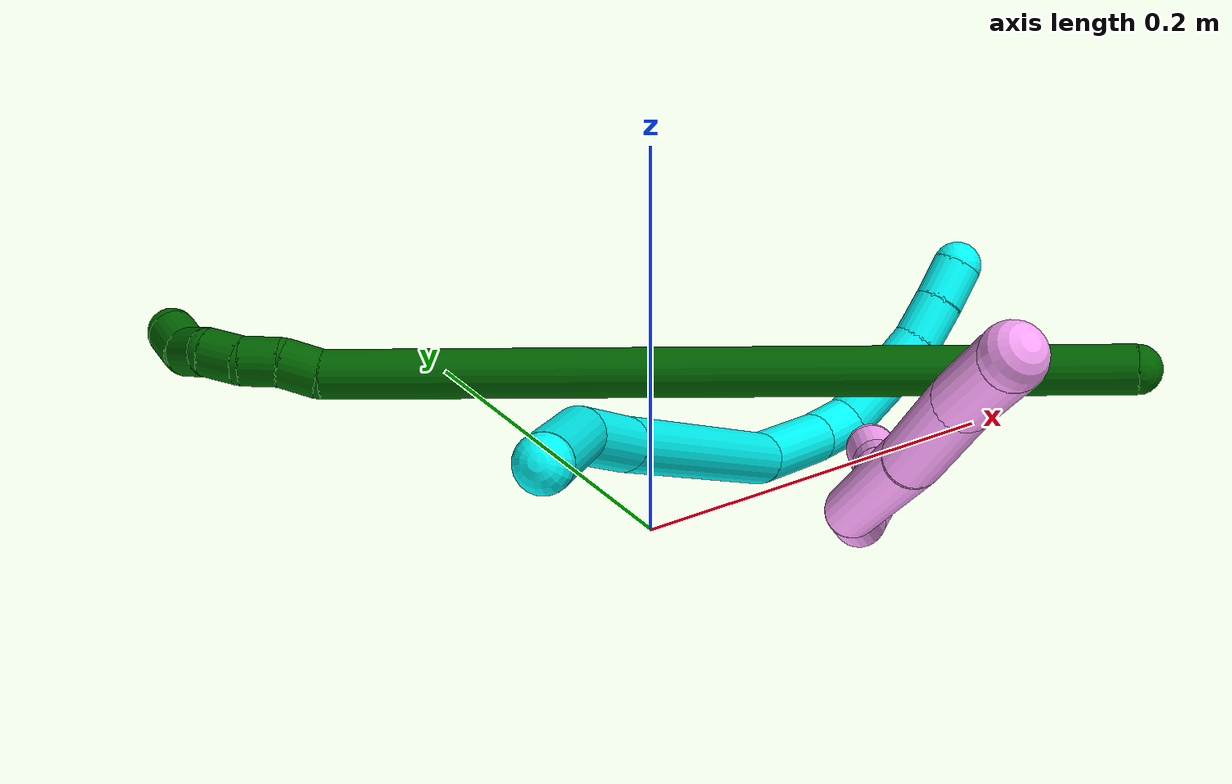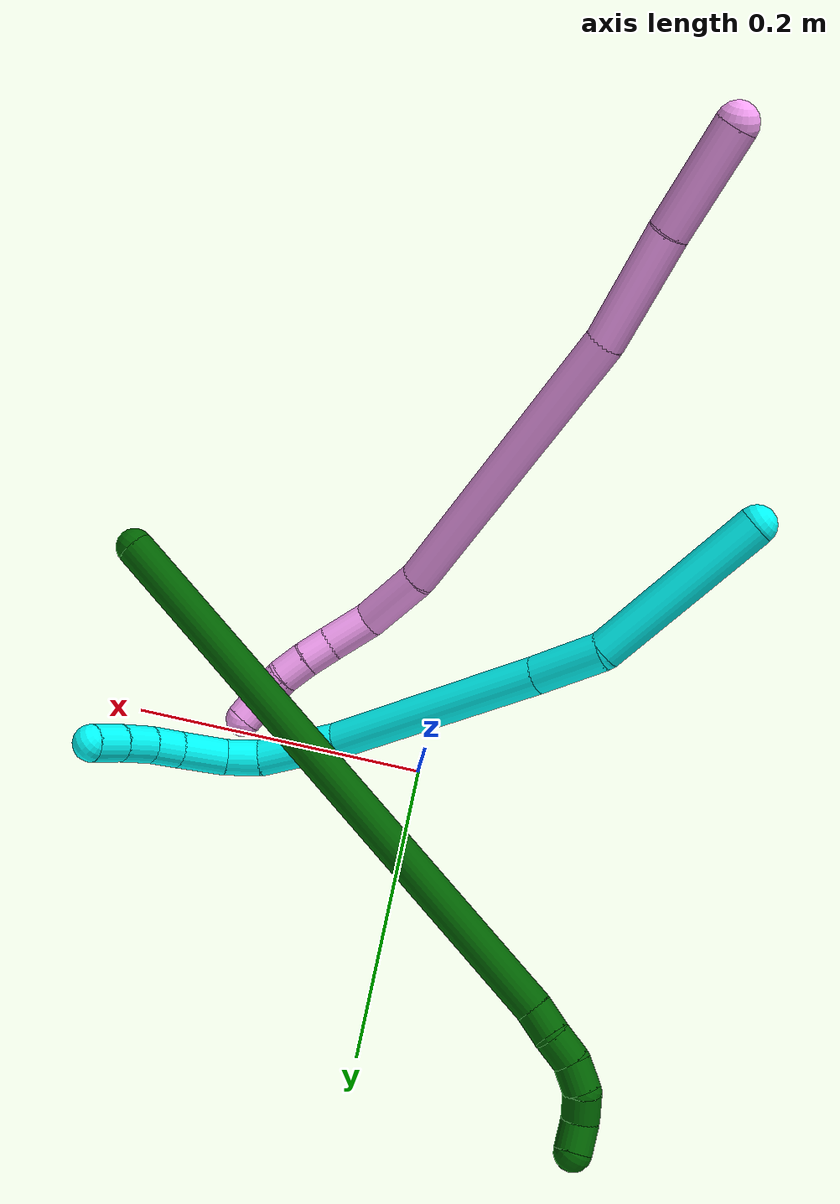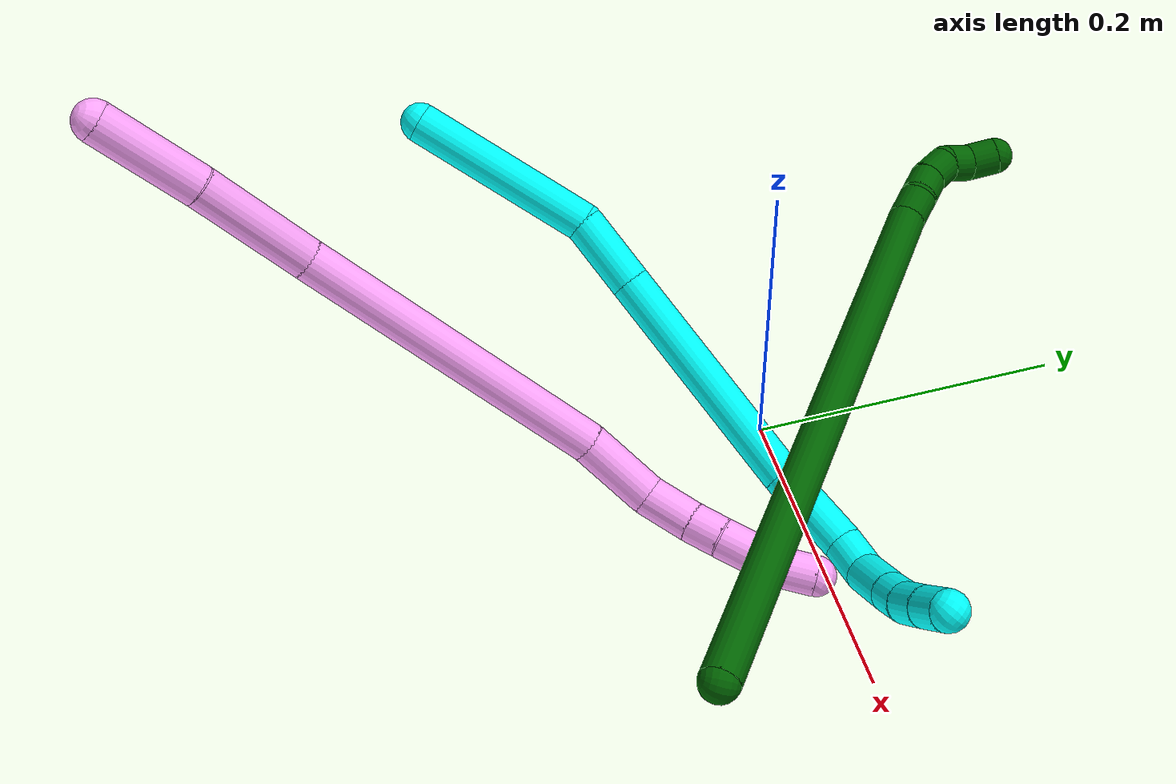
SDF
<sdf version="1.7">
 <world name="default">
  <model name="photoneo_s_sensor">
   <static>1</static>
   <pose>0 0 2 1.57079 1.57079 3.14159</pose>
   <link name="link">
    <inertial><mass>0.1</mass></inertial>
    <sensor name="sensor" type="depth">
     <update_rate>30</update_rate>
     <camera>
      <horizontal_fov>1.22</horizontal_fov>
      <image><width>1920</width><height>1200</height><format>B8G8R8</format></image>
      <clip><near>0.1</near><far>4</far></clip>
      <depth_camera><output>points</output></depth_camera>
     </camera>
     <plugin name="camera_plugin" filename="libgazebo_ros_depth_camera.so">
      <baseline>0.2</baseline>
      <alwaysOn>1</alwaysOn>
      <updateRate>0.0</updateRate>
      <cameraName>camera_ir</cameraName>
      <imageTopicName>/camera/color/image_raw</imageTopicName>
      <cameraInfoTopicName>/camera/color/camera_info</cameraInfoTopicName>
      <depthImageTopicName>/camera/depth/image_raw</depthImageTopicName>
      <depthImageCameraInfoTopicName>/camera/depth/camera_info</depthImageCameraInfoTopicName>
      <pointCloudTopicName>/camera/depth/points</pointCloudTopicName>
      <frameName>fr_optical</frameName>
      <pointCloudCutoff>0.1</pointCloudCutoff>
      <pointCloudCutoffMax>2.0</pointCloudCutoffMax>
      <distortionK1>0</distortionK1>
      <distortionK2>0</distortionK2>
      <distortionK3>0</distortionK3>
      <distortionT1>0</distortionT1>
      <distortionT2>0</distortionT2>
      <CxPrime>0</CxPrime>
      <Cx>0</Cx>
      <Cy>0</Cy>
      <focalLength>0</focalLength>
      <hackBaseline>0</hackBaseline>
     </plugin>
    </sensor>
   </link>
  </model>
  <model name="bin">
   <static>1</static>
   <link name="bottom">
    <collision name="collision-bottom">
     <pose>0 0 -0.01 0 -0 0</pose>
     <geometry><box><size>0.8 0.6 0.02</size></box></geometry>
     <surface>
      <friction><ode><mu>100</mu><mu2>100</mu2></ode></friction>
      <contact><collide_bitmask>65535</collide_bitmask></contact>
     </surface>
    </collision>
   </link>
   <link name="west_wall">
    <collision name="collision-west_wall">
     <pose>-0.41 0 0.1 0 -0 0</pose>
     <geometry><box><size>0.02 0.6 0.2</size></box></geometry>
     <surface>
      <friction><ode><mu>100</mu><mu2>100</mu2></ode></friction>
      <contact><collide_bitmask>65535</collide_bitmask></contact>
     </surface>
    </collision>
   </link>
   <link name="east_wall">
    <collision name="collision-east_wall">
     <pose>0.41 0 0.1 0 -0 0</pose>
     <geometry><box><size>0.02 0.6 0.2</size></box></geometry>
     <surface>
      <friction><ode><mu>100</mu><mu2>100</mu2></ode></friction>
      <contact><collide_bitmask>65535</collide_bitmask></contact>
     </surface>
    </collision>
   </link>
   <link name="south_wall">
    <collision name="collision-south_wall">
     <pose>0 -0.31 0.1 0 -0 0</pose>
     <geometry><box><size>0.8 0.02 0.2</size></box></geometry>
     <surface>
      <friction><ode><mu>100</mu><mu2>100</mu2></ode></friction>
      <contact><collide_bitmask>65535</collide_bitmask></contact>
     </surface>
    </collision>
   </link>
   <link name="north_wall">
    <collision name="collision-north_wall">
     <pose>0 0.31 0.1 0 -0 0</pose>
     <geometry><box><size>0.8 0.02 0.2</size></box></geometry>
     <surface>
      <friction><ode><mu>100</mu><mu2>100</mu2></ode></friction>
      <contact><collide_bitmask>65535</collide_bitmask></contact>
     </surface>
    </collision>
   </link>
  </model>
  <model name="3">
   <static>0</static>
   <link name="3">
    <collision name="collision-cylinder-e_1_1_4">
     <pose>-0.000265 0.009664 -0.058177 -2.97699 -0.004485 0.054362</pose>
     <geometry><cylinder><radius>0.0125</radius><length>0.117949</length></cylinder></geometry>
     <surface>
      <friction><ode><mu>1.16</mu><mu2>1.16</mu2><slip1>0</slip1><slip2>0</slip2></ode></friction>
      <contact><ode><kp>1e+06</kp><kd>1</kd><max_vel>0</max_vel><min_depth>0.001</min_depth></ode></contact>
     </surface>
    </collision>
    <visual name="visual-cylinder-e_1_1_4">
     <pose>-0.000265 0.009664 -0.058177 -2.97699 -0.004485 0.054362</pose>
     <geometry><cylinder><radius>0.0125</radius><length>0.117949</length></cylinder></geometry>
     <material><ambient>0.003922 1 0.996078 1</ambient></material>
    </visual>
    <collision name="collision-cylinder-e_2_4_5">
     <pose>0.004504 0.016183 -0.139284 3.00531 0.214122 2.01007</pose>
     <geometry><cylinder><radius>0.0125</radius><length>0.047372</length></cylinder></geometry>
     <surface>
      <friction><ode><mu>1.16</mu><mu2>1.16</mu2><slip1>0</slip1><slip2>0</slip2></ode></friction>
      <contact><ode><kp>1e+06</kp><kd>1</kd><max_vel>0</max_vel><min_depth>0.001</min_depth></ode></contact>
     </surface>
    </collision>
    <visual name="visual-cylinder-e_2_4_5">
     <pose>0.004504 0.016183 -0.139284 3.00531 0.214122 2.01007</pose>
     <geometry><cylinder><radius>0.0125</radius><length>0.047372</length></cylinder></geometry>
     <material><ambient>0.003922 1 0.996078 1</ambient></material>
    </visual>
    <collision name="collision-cylinder-e_3_5_6">
     <pose>0.028724 0.004519 -0.235267 3.0255 0.255192 2.29096</pose>
     <geometry><cylinder><radius>0.0125</radius><length>0.152017</length></cylinder></geometry>
     <surface>
      <friction><ode><mu>1.16</mu><mu2>1.16</mu2><slip1>0</slip1><slip2>0</slip2></ode></friction>
      <contact><ode><kp>1e+06</kp><kd>1</kd><max_vel>0</max_vel><min_depth>0.001</min_depth></ode></contact>
     </surface>
    </collision>
    <visual name="visual-cylinder-e_3_5_6">
     <pose>0.028724 0.004519 -0.235267 3.0255 0.255192 2.29096</pose>
     <geometry><cylinder><radius>0.0125</radius><length>0.152017</length></cylinder></geometry>
     <material><ambient>0.003922 1 0.996078 1</ambient></material>
    </visual>
    <collision name="collision-cylinder-e_4_6_7">
     <pose>0.060473 -0.002747 -0.33364 -3.09214 0.460044 -2.93116</pose>
     <geometry><cylinder><radius>0.0125</radius><length>0.056588</length></cylinder></geometry>
     <surface>
      <friction><ode><mu>1.16</mu><mu2>1.16</mu2><slip1>0</slip1><slip2>0</slip2></ode></friction>
      <contact><ode><kp>1e+06</kp><kd>1</kd><max_vel>0</max_vel><min_depth>0.001</min_depth></ode></contact>
     </surface>
    </collision>
    <visual name="visual-cylinder-e_4_6_7">
     <pose>0.060473 -0.002747 -0.33364 -3.09214 0.460044 -2.93116</pose>
     <geometry><cylinder><radius>0.0125</radius><length>0.056588</length></cylinder></geometry>
     <material><ambient>0.003922 1 0.996078 1</ambient></material>
    </visual>
    <collision name="collision-cylinder-e_5_7_8">
     <pose>0.08195 -0.000119 -0.36739 -2.97993 0.806883 -2.76651</pose>
     <geometry><cylinder><radius>0.0125</radius><length>0.024689</length></cylinder></geometry>
     <surface>
      <friction><ode><mu>1.16</mu><mu2>1.16</mu2><slip1>0</slip1><slip2>0</slip2></ode></friction>
      <contact><ode><kp>1e+06</kp><kd>1</kd><max_vel>0</max_vel><min_depth>0.001</min_depth></ode></contact>
     </surface>
    </collision>
    <visual name="visual-cylinder-e_5_7_8">
     <pose>0.08195 -0.000119 -0.36739 -2.97993 0.806883 -2.76651</pose>
     <geometry><cylinder><radius>0.0125</radius><length>0.024689</length></cylinder></geometry>
     <material><ambient>0.003922 1 0.996078 1</ambient></material>
    </visual>
    <collision name="collision-cylinder-e_6_8_9">
     <pose>0.106048 0.008321 -0.380789 -2.18384 1.05349 -1.684</pose>
     <geometry><cylinder><radius>0.0125</radius><length>0.034937</length></cylinder></geometry>
     <surface>
      <friction><ode><mu>1.16</mu><mu2>1.16</mu2><slip1>0</slip1><slip2>0</slip2></ode></friction>
      <contact><ode><kp>1e+06</kp><kd>1</kd><max_vel>0</max_vel><min_depth>0.001</min_depth></ode></contact>
     </surface>
    </collision>
    <visual name="visual-cylinder-e_6_8_9">
     <pose>0.106048 0.008321 -0.380789 -2.18384 1.05349 -1.684</pose>
     <geometry><cylinder><radius>0.0125</radius><length>0.034937</length></cylinder></geometry>
     <material><ambient>0.003922 1 0.996078 1</ambient></material>
    </visual>
    <collision name="collision-cylinder-e_7_9_10">
     <pose>0.130296 0.020047 -0.388128 -2.04105 1.04775 -1.51078</pose>
     <geometry><cylinder><radius>0.0125</radius><length>0.02093</length></cylinder></geometry>
     <surface>
      <friction><ode><mu>1.16</mu><mu2>1.16</mu2><slip1>0</slip1><slip2>0</slip2></ode></friction>
      <contact><ode><kp>1e+06</kp><kd>1</kd><max_vel>0</max_vel><min_depth>0.001</min_depth></ode></contact>
     </surface>
    </collision>
    <visual name="visual-cylinder-e_7_9_10">
     <pose>0.130296 0.020047 -0.388128 -2.04105 1.04775 -1.51078</pose>
     <geometry><cylinder><radius>0.0125</radius><length>0.02093</length></cylinder></geometry>
     <material><ambient>0.003922 1 0.996078 1</ambient></material>
    </visual>
    <collision name="collision-cylinder-e_8_10_11">
     <pose>0.148545 0.031755 -0.39228 -1.81868 0.901112 -1.11205</pose>
     <geometry><cylinder><radius>0.0125</radius><length>0.023425</length></cylinder></geometry>
     <surface>
      <friction><ode><mu>1.16</mu><mu2>1.16</mu2><slip1>0</slip1><slip2>0</slip2></ode></friction>
      <contact><ode><kp>1e+06</kp><kd>1</kd><max_vel>0</max_vel><min_depth>0.001</min_depth></ode></contact>
     </surface>
    </collision>
    <visual name="visual-cylinder-e_8_10_11">
     <pose>0.148545 0.031755 -0.39228 -1.81868 0.901112 -1.11205</pose>
     <geometry><cylinder><radius>0.0125</radius><length>0.023425</length></cylinder></geometry>
     <material><ambient>0.003922 1 0.996078 1</ambient></material>
    </visual>
    <collision name="collision-cylinder-e_9_11_2">
     <pose>0.166035 0.045795 -0.39609 -1.85285 0.851253 -1.08577</pose>
     <geometry><cylinder><radius>0.0125</radius><length>0.022092</length></cylinder></geometry>
     <surface>
      <friction><ode><mu>1.16</mu><mu2>1.16</mu2><slip1>0</slip1><slip2>0</slip2></ode></friction>
      <contact><ode><kp>1e+06</kp><kd>1</kd><max_vel>0</max_vel><min_depth>0.001</min_depth></ode></contact>
     </surface>
    </collision>
    <visual name="visual-cylinder-e_9_11_2">
     <pose>0.166035 0.045795 -0.39609 -1.85285 0.851253 -1.08577</pose>
     <geometry><cylinder><radius>0.0125</radius><length>0.022092</length></cylinder></geometry>
     <material><ambient>0.003922 1 0.996078 1</ambient></material>
    </visual>
    <collision name="collision-sphere-2">
     <pose>0.174343 0.052787 -0.398116 0 -0 0</pose>
     <geometry><sphere><radius>0.0125</radius></sphere></geometry>
     <surface>
      <friction><ode><mu>1.16</mu><mu2>1.16</mu2><slip1>0</slip1><slip2>0</slip2></ode></friction>
      <contact><ode><kp>1e+06</kp><kd>1</kd><max_vel>0</max_vel><min_depth>0.001</min_depth></ode></contact>
     </surface>
    </collision>
    <visual name="visual-sphere-2">
     <pose>0.174343 0.052787 -0.398116 0 -0 0</pose>
     <geometry><sphere><radius>0.0125</radius></sphere></geometry>
     <material><ambient>0.003922 1 0.996078 1</ambient></material>
    </visual>
    <collision name="collision-sphere-11">
     <pose>0.157727 0.038803 -0.394064 0 -0 0</pose>
     <geometry><sphere><radius>0.0125</radius></sphere></geometry>
     <surface>
      <friction><ode><mu>1.16</mu><mu2>1.16</mu2><slip1>0</slip1><slip2>0</slip2></ode></friction>
      <contact><ode><kp>1e+06</kp><kd>1</kd><max_vel>0</max_vel><min_depth>0.001</min_depth></ode></contact>
     </surface>
    </collision>
    <visual name="visual-sphere-11">
     <pose>0.157727 0.038803 -0.394064 0 -0 0</pose>
     <geometry><sphere><radius>0.0125</radius></sphere></geometry>
     <material><ambient>0.003922 1 0.996078 1</ambient></material>
    </visual>
    <collision name="collision-sphere-10">
     <pose>0.139362 0.024707 -0.390496 0 -0 0</pose>
     <geometry><sphere><radius>0.0125</radius></sphere></geometry>
     <surface>
      <friction><ode><mu>1.16</mu><mu2>1.16</mu2><slip1>0</slip1><slip2>0</slip2></ode></friction>
      <contact><ode><kp>1e+06</kp><kd>1</kd><max_vel>0</max_vel><min_depth>0.001</min_depth></ode></contact>
     </surface>
    </collision>
    <visual name="visual-sphere-10">
     <pose>0.139362 0.024707 -0.390496 0 -0 0</pose>
     <geometry><sphere><radius>0.0125</radius></sphere></geometry>
     <material><ambient>0.003922 1 0.996078 1</ambient></material>
    </visual>
    <collision name="collision-sphere-9">
     <pose>0.121231 0.015387 -0.385759 0 -0 0</pose>
     <geometry><sphere><radius>0.0125</radius></sphere></geometry>
     <surface>
      <friction><ode><mu>1.16</mu><mu2>1.16</mu2><slip1>0</slip1><slip2>0</slip2></ode></friction>
      <contact><ode><kp>1e+06</kp><kd>1</kd><max_vel>0</max_vel><min_depth>0.001</min_depth></ode></contact>
     </surface>
    </collision>
    <visual name="visual-sphere-9">
     <pose>0.121231 0.015387 -0.385759 0 -0 0</pose>
     <geometry><sphere><radius>0.0125</radius></sphere></geometry>
     <material><ambient>0.003922 1 0.996078 1</ambient></material>
    </visual>
    <collision name="collision-sphere-4">
     <pose>-0.000529 0.019327 -0.116353 0 -0 0</pose>
     <geometry><sphere><radius>0.0125</radius></sphere></geometry>
     <surface>
      <friction><ode><mu>1.16</mu><mu2>1.16</mu2><slip1>0</slip1><slip2>0</slip2></ode></friction>
      <contact><ode><kp>1e+06</kp><kd>1</kd><max_vel>0</max_vel><min_depth>0.001</min_depth></ode></contact>
     </surface>
    </collision>
    <visual name="visual-sphere-4">
     <pose>-0.000529 0.019327 -0.116353 0 -0 0</pose>
     <geometry><sphere><radius>0.0125</radius></sphere></geometry>
     <material><ambient>0.003922 1 0.996078 1</ambient></material>
    </visual>
    <collision name="collision-sphere-1">
     <geometry><sphere><radius>0.0125</radius></sphere></geometry>
     <surface>
      <friction><ode><mu>1.16</mu><mu2>1.16</mu2><slip1>0</slip1><slip2>0</slip2></ode></friction>
      <contact><ode><kp>1e+06</kp><kd>1</kd><max_vel>0</max_vel><min_depth>0.001</min_depth></ode></contact>
     </surface>
    </collision>
    <visual name="visual-sphere-1">
     <geometry><sphere><radius>0.0125</radius></sphere></geometry>
     <material><ambient>0.003922 1 0.996078 1</ambient></material>
    </visual>
    <collision name="collision-sphere-8">
     <pose>0.090865 0.001255 -0.375818 0 -0 0</pose>
     <geometry><sphere><radius>0.0125</radius></sphere></geometry>
     <surface>
      <friction><ode><mu>1.16</mu><mu2>1.16</mu2><slip1>0</slip1><slip2>0</slip2></ode></friction>
      <contact><ode><kp>1e+06</kp><kd>1</kd><max_vel>0</max_vel><min_depth>0.001</min_depth></ode></contact>
     </surface>
    </collision>
    <visual name="visual-sphere-8">
     <pose>0.090865 0.001255 -0.375818 0 -0 0</pose>
     <geometry><sphere><radius>0.0125</radius></sphere></geometry>
     <material><ambient>0.003922 1 0.996078 1</ambient></material>
    </visual>
    <collision name="collision-sphere-5">
     <pose>0.009537 0.013038 -0.162215 0 -0 0</pose>
     <geometry><sphere><radius>0.0125</radius></sphere></geometry>
     <surface>
      <friction><ode><mu>1.16</mu><mu2>1.16</mu2><slip1>0</slip1><slip2>0</slip2></ode></friction>
      <contact><ode><kp>1e+06</kp><kd>1</kd><max_vel>0</max_vel><min_depth>0.001</min_depth></ode></contact>
     </surface>
    </collision>
    <visual name="visual-sphere-5">
     <pose>0.009537 0.013038 -0.162215 0 -0 0</pose>
     <geometry><sphere><radius>0.0125</radius></sphere></geometry>
     <material><ambient>0.003922 1 0.996078 1</ambient></material>
    </visual>
    <collision name="collision-sphere-6">
     <pose>0.047911 -0.004 -0.308319 0 -0 0</pose>
     <geometry><sphere><radius>0.0125</radius></sphere></geometry>
     <surface>
      <friction><ode><mu>1.16</mu><mu2>1.16</mu2><slip1>0</slip1><slip2>0</slip2></ode></friction>
      <contact><ode><kp>1e+06</kp><kd>1</kd><max_vel>0</max_vel><min_depth>0.001</min_depth></ode></contact>
     </surface>
    </collision>
    <visual name="visual-sphere-6">
     <pose>0.047911 -0.004 -0.308319 0 -0 0</pose>
     <geometry><sphere><radius>0.0125</radius></sphere></geometry>
     <material><ambient>0.003922 1 0.996078 1</ambient></material>
    </visual>
    <collision name="collision-sphere-7">
     <pose>0.073036 -0.001494 -0.358962 0 -0 0</pose>
     <geometry><sphere><radius>0.0125</radius></sphere></geometry>
     <surface>
      <friction><ode><mu>1.16</mu><mu2>1.16</mu2><slip1>0</slip1><slip2>0</slip2></ode></friction>
      <contact><ode><kp>1e+06</kp><kd>1</kd><max_vel>0</max_vel><min_depth>0.001</min_depth></ode></contact>
     </surface>
    </collision>
    <visual name="visual-sphere-7">
     <pose>0.073036 -0.001494 -0.358962 0 -0 0</pose>
     <geometry><sphere><radius>0.0125</radius></sphere></geometry>
     <material><ambient>0.003922 1 0.996078 1</ambient></material>
    </visual>
    <inertial>
     <pose>0.047148 0.009802 -0.233084 0 -0 0</pose>
     <mass>0.5</mass>
     <inertia>
      <ixx>0.000169</ixx>
      <ixy>0</ixy>
      <ixz>0</ixz>
      <iyy>0.000323</iyy>
      <iyz>0</iyz>
      <izz>-0.00012</izz>
     </inertia>
    </inertial>
   </link>
   <pose>-0.16411 -0.174059 0.16621 0.967342 -0.437273 -0.486234</pose>
  </model>
  <model name="4">
   <static>0</static>
   <link name="4">
    <collision name="collision-cylinder-e_1_1_4">
     <pose>0.007881 0.008028 -0.030369 -2.88316 0.245815 -1.52022</pose>
     <geometry><cylinder><radius>0.0125</radius><length>0.06477</length></cylinder></geometry>
     <surface>
      <friction><ode><mu>1.16</mu><mu2>1.16</mu2><slip1>0</slip1><slip2>0</slip2></ode></friction>
      <contact><ode><kp>1e+06</kp><kd>1</kd><max_vel>0</max_vel><min_depth>0.001</min_depth></ode></contact>
     </surface>
    </collision>
    <visual name="visual-cylinder-e_1_1_4">
     <pose>0.007881 0.008028 -0.030369 -2.88316 0.245815 -1.52022</pose>
     <geometry><cylinder><radius>0.0125</radius><length>0.06477</length></cylinder></geometry>
     <material><ambient>1 0.65098 0.996078 1</ambient></material>
    </visual>
    <collision name="collision-cylinder-e_2_4_5">
     <pose>0.024453 0.021988 -0.096057 -2.97519 0.238071 -1.92381</pose>
     <geometry><cylinder><radius>0.0125</radius><length>0.073709</length></cylinder></geometry>
     <surface>
      <friction><ode><mu>1.16</mu><mu2>1.16</mu2><slip1>0</slip1><slip2>0</slip2></ode></friction>
      <contact><ode><kp>1e+06</kp><kd>1</kd><max_vel>0</max_vel><min_depth>0.001</min_depth></ode></contact>
     </surface>
    </collision>
    <visual name="visual-cylinder-e_2_4_5">
     <pose>0.024453 0.021988 -0.096057 -2.97519 0.238071 -1.92381</pose>
     <geometry><cylinder><radius>0.0125</radius><length>0.073709</length></cylinder></geometry>
     <material><ambient>1 0.65098 0.996078 1</ambient></material>
    </visual>
    <collision name="collision-cylinder-e_3_5_6">
     <pose>0.064644 0.060679 -0.220127 -2.78799 0.321421 -1.47368</pose>
     <geometry><cylinder><radius>0.0125</radius><length>0.199417</length></cylinder></geometry>
     <surface>
      <friction><ode><mu>1.16</mu><mu2>1.16</mu2><slip1>0</slip1><slip2>0</slip2></ode></friction>
      <contact><ode><kp>1e+06</kp><kd>1</kd><max_vel>0</max_vel><min_depth>0.001</min_depth></ode></contact>
     </surface>
    </collision>
    <visual name="visual-cylinder-e_3_5_6">
     <pose>0.064644 0.060679 -0.220127 -2.78799 0.321421 -1.47368</pose>
     <geometry><cylinder><radius>0.0125</radius><length>0.199417</length></cylinder></geometry>
     <material><ambient>1 0.65098 0.996078 1</ambient></material>
    </visual>
    <collision name="collision-cylinder-e_4_6_7">
     <pose>0.107875 0.101782 -0.328679 -2.74284 0.49972 -1.80216</pose>
     <geometry><cylinder><radius>0.0125</radius><length>0.048966</length></cylinder></geometry>
     <surface>
      <friction><ode><mu>1.16</mu><mu2>1.16</mu2><slip1>0</slip1><slip2>0</slip2></ode></friction>
      <contact><ode><kp>1e+06</kp><kd>1</kd><max_vel>0</max_vel><min_depth>0.001</min_depth></ode></contact>
     </surface>
    </collision>
    <visual name="visual-cylinder-e_4_6_7">
     <pose>0.107875 0.101782 -0.328679 -2.74284 0.49972 -1.80216</pose>
     <geometry><cylinder><radius>0.0125</radius><length>0.048966</length></cylinder></geometry>
     <material><ambient>1 0.65098 0.996078 1</ambient></material>
    </visual>
    <collision name="collision-cylinder-e_5_7_8">
     <pose>0.12686 0.120929 -0.357453 -2.26378 0.476757 -0.955308</pose>
     <geometry><cylinder><radius>0.0125</radius><length>0.03161</length></cylinder></geometry>
     <surface>
      <friction><ode><mu>1.16</mu><mu2>1.16</mu2><slip1>0</slip1><slip2>0</slip2></ode></friction>
      <contact><ode><kp>1e+06</kp><kd>1</kd><max_vel>0</max_vel><min_depth>0.001</min_depth></ode></contact>
     </surface>
    </collision>
    <visual name="visual-cylinder-e_5_7_8">
     <pose>0.12686 0.120929 -0.357453 -2.26378 0.476757 -0.955308</pose>
     <geometry><cylinder><radius>0.0125</radius><length>0.03161</length></cylinder></geometry>
     <material><ambient>1 0.65098 0.996078 1</ambient></material>
    </visual>
    <collision name="collision-cylinder-e_6_8_9">
     <pose>0.138322 0.139308 -0.371853 -2.19265 0.424193 -0.794002</pose>
     <geometry><cylinder><radius>0.0125</radius><length>0.020453</length></cylinder></geometry>
     <surface>
      <friction><ode><mu>1.16</mu><mu2>1.16</mu2><slip1>0</slip1><slip2>0</slip2></ode></friction>
      <contact><ode><kp>1e+06</kp><kd>1</kd><max_vel>0</max_vel><min_depth>0.001</min_depth></ode></contact>
     </surface>
    </collision>
    <visual name="visual-cylinder-e_6_8_9">
     <pose>0.138322 0.139308 -0.371853 -2.19265 0.424193 -0.794002</pose>
     <geometry><cylinder><radius>0.0125</radius><length>0.020453</length></cylinder></geometry>
     <material><ambient>1 0.65098 0.996078 1</ambient></material>
    </visual>
    <collision name="collision-cylinder-e_7_9_10">
     <pose>0.146336 0.153866 -0.383375 -2.28817 0.389622 -0.818923</pose>
     <geometry><cylinder><radius>0.0125</radius><length>0.020035</length></cylinder></geometry>
     <surface>
      <friction><ode><mu>1.16</mu><mu2>1.16</mu2><slip1>0</slip1><slip2>0</slip2></ode></friction>
      <contact><ode><kp>1e+06</kp><kd>1</kd><max_vel>0</max_vel><min_depth>0.001</min_depth></ode></contact>
     </surface>
    </collision>
    <visual name="visual-cylinder-e_7_9_10">
     <pose>0.146336 0.153866 -0.383375 -2.28817 0.389622 -0.818923</pose>
     <geometry><cylinder><radius>0.0125</radius><length>0.020035</length></cylinder></geometry>
     <material><ambient>1 0.65098 0.996078 1</ambient></material>
    </visual>
    <collision name="collision-cylinder-e_8_10_11">
     <pose>0.153254 0.166977 -0.397103 -2.46528 0.307864 -0.831049</pose>
     <geometry><cylinder><radius>0.0125</radius><length>0.020549</length></cylinder></geometry>
     <surface>
      <friction><ode><mu>1.16</mu><mu2>1.16</mu2><slip1>0</slip1><slip2>0</slip2></ode></friction>
      <contact><ode><kp>1e+06</kp><kd>1</kd><max_vel>0</max_vel><min_depth>0.001</min_depth></ode></contact>
     </surface>
    </collision>
    <visual name="visual-cylinder-e_8_10_11">
     <pose>0.153254 0.166977 -0.397103 -2.46528 0.307864 -0.831049</pose>
     <geometry><cylinder><radius>0.0125</radius><length>0.020549</length></cylinder></geometry>
     <material><ambient>1 0.65098 0.996078 1</ambient></material>
    </visual>
    <collision name="collision-cylinder-e_9_11_2">
     <pose>0.15787 0.180635 -0.411523 -2.30417 0.147146 -0.328263</pose>
     <geometry><cylinder><radius>0.0125</radius><length>0.020491</length></cylinder></geometry>
     <surface>
      <friction><ode><mu>1.16</mu><mu2>1.16</mu2><slip1>0</slip1><slip2>0</slip2></ode></friction>
      <contact><ode><kp>1e+06</kp><kd>1</kd><max_vel>0</max_vel><min_depth>0.001</min_depth></ode></contact>
     </surface>
    </collision>
    <visual name="visual-cylinder-e_9_11_2">
     <pose>0.15787 0.180635 -0.411523 -2.30417 0.147146 -0.328263</pose>
     <geometry><cylinder><radius>0.0125</radius><length>0.020491</length></cylinder></geometry>
     <material><ambient>1 0.65098 0.996078 1</ambient></material>
    </visual>
    <collision name="collision-sphere-2">
     <pose>0.159372 0.188165 -0.418307 0 -0 0</pose>
     <geometry><sphere><radius>0.0125</radius></sphere></geometry>
     <surface>
      <friction><ode><mu>1.16</mu><mu2>1.16</mu2><slip1>0</slip1><slip2>0</slip2></ode></friction>
      <contact><ode><kp>1e+06</kp><kd>1</kd><max_vel>0</max_vel><min_depth>0.001</min_depth></ode></contact>
     </surface>
    </collision>
    <visual name="visual-sphere-2">
     <pose>0.159372 0.188165 -0.418307 0 -0 0</pose>
     <geometry><sphere><radius>0.0125</radius></sphere></geometry>
     <material><ambient>1 0.65098 0.996078 1</ambient></material>
    </visual>
    <collision name="collision-sphere-11">
     <pose>0.156368 0.173106 -0.404739 0 -0 0</pose>
     <geometry><sphere><radius>0.0125</radius></sphere></geometry>
     <surface>
      <friction><ode><mu>1.16</mu><mu2>1.16</mu2><slip1>0</slip1><slip2>0</slip2></ode></friction>
      <contact><ode><kp>1e+06</kp><kd>1</kd><max_vel>0</max_vel><min_depth>0.001</min_depth></ode></contact>
     </surface>
    </collision>
    <visual name="visual-sphere-11">
     <pose>0.156368 0.173106 -0.404739 0 -0 0</pose>
     <geometry><sphere><radius>0.0125</radius></sphere></geometry>
     <material><ambient>1 0.65098 0.996078 1</ambient></material>
    </visual>
    <collision name="collision-sphere-10">
     <pose>0.150141 0.160849 -0.389467 0 -0 0</pose>
     <geometry><sphere><radius>0.0125</radius></sphere></geometry>
     <surface>
      <friction><ode><mu>1.16</mu><mu2>1.16</mu2><slip1>0</slip1><slip2>0</slip2></ode></friction>
      <contact><ode><kp>1e+06</kp><kd>1</kd><max_vel>0</max_vel><min_depth>0.001</min_depth></ode></contact>
     </surface>
    </collision>
    <visual name="visual-sphere-10">
     <pose>0.150141 0.160849 -0.389467 0 -0 0</pose>
     <geometry><sphere><radius>0.0125</radius></sphere></geometry>
     <material><ambient>1 0.65098 0.996078 1</ambient></material>
    </visual>
    <collision name="collision-sphere-9">
     <pose>0.142531 0.146883 -0.377283 0 -0 0</pose>
     <geometry><sphere><radius>0.0125</radius></sphere></geometry>
     <surface>
      <friction><ode><mu>1.16</mu><mu2>1.16</mu2><slip1>0</slip1><slip2>0</slip2></ode></friction>
      <contact><ode><kp>1e+06</kp><kd>1</kd><max_vel>0</max_vel><min_depth>0.001</min_depth></ode></contact>
     </surface>
    </collision>
    <visual name="visual-sphere-9">
     <pose>0.142531 0.146883 -0.377283 0 -0 0</pose>
     <geometry><sphere><radius>0.0125</radius></sphere></geometry>
     <material><ambient>1 0.65098 0.996078 1</ambient></material>
    </visual>
    <collision name="collision-sphere-4">
     <pose>0.015762 0.016056 -0.060737 0 -0 0</pose>
     <geometry><sphere><radius>0.0125</radius></sphere></geometry>
     <surface>
      <friction><ode><mu>1.16</mu><mu2>1.16</mu2><slip1>0</slip1><slip2>0</slip2></ode></friction>
      <contact><ode><kp>1e+06</kp><kd>1</kd><max_vel>0</max_vel><min_depth>0.001</min_depth></ode></contact>
     </surface>
    </collision>
    <visual name="visual-sphere-4">
     <pose>0.015762 0.016056 -0.060737 0 -0 0</pose>
     <geometry><sphere><radius>0.0125</radius></sphere></geometry>
     <material><ambient>1 0.65098 0.996078 1</ambient></material>
    </visual>
    <collision name="collision-sphere-1">
     <geometry><sphere><radius>0.0125</radius></sphere></geometry>
     <surface>
      <friction><ode><mu>1.16</mu><mu2>1.16</mu2><slip1>0</slip1><slip2>0</slip2></ode></friction>
      <contact><ode><kp>1e+06</kp><kd>1</kd><max_vel>0</max_vel><min_depth>0.001</min_depth></ode></contact>
     </surface>
    </collision>
    <visual name="visual-sphere-1">
     <geometry><sphere><radius>0.0125</radius></sphere></geometry>
     <material><ambient>1 0.65098 0.996078 1</ambient></material>
    </visual>
    <collision name="collision-sphere-8">
     <pose>0.134113 0.131732 -0.366424 0 -0 0</pose>
     <geometry><sphere><radius>0.0125</radius></sphere></geometry>
     <surface>
      <friction><ode><mu>1.16</mu><mu2>1.16</mu2><slip1>0</slip1><slip2>0</slip2></ode></friction>
      <contact><ode><kp>1e+06</kp><kd>1</kd><max_vel>0</max_vel><min_depth>0.001</min_depth></ode></contact>
     </surface>
    </collision>
    <visual name="visual-sphere-8">
     <pose>0.134113 0.131732 -0.366424 0 -0 0</pose>
     <geometry><sphere><radius>0.0125</radius></sphere></geometry>
     <material><ambient>1 0.65098 0.996078 1</ambient></material>
    </visual>
    <collision name="collision-sphere-5">
     <pose>0.033144 0.02792 -0.131378 0 -0 0</pose>
     <geometry><sphere><radius>0.0125</radius></sphere></geometry>
     <surface>
      <friction><ode><mu>1.16</mu><mu2>1.16</mu2><slip1>0</slip1><slip2>0</slip2></ode></friction>
      <contact><ode><kp>1e+06</kp><kd>1</kd><max_vel>0</max_vel><min_depth>0.001</min_depth></ode></contact>
     </surface>
    </collision>
    <visual name="visual-sphere-5">
     <pose>0.033144 0.02792 -0.131378 0 -0 0</pose>
     <geometry><sphere><radius>0.0125</radius></sphere></geometry>
     <material><ambient>1 0.65098 0.996078 1</ambient></material>
    </visual>
    <collision name="collision-sphere-6">
     <pose>0.096143 0.093438 -0.308876 0 -0 0</pose>
     <geometry><sphere><radius>0.0125</radius></sphere></geometry>
     <surface>
      <friction><ode><mu>1.16</mu><mu2>1.16</mu2><slip1>0</slip1><slip2>0</slip2></ode></friction>
      <contact><ode><kp>1e+06</kp><kd>1</kd><max_vel>0</max_vel><min_depth>0.001</min_depth></ode></contact>
     </surface>
    </collision>
    <visual name="visual-sphere-6">
     <pose>0.096143 0.093438 -0.308876 0 -0 0</pose>
     <geometry><sphere><radius>0.0125</radius></sphere></geometry>
     <material><ambient>1 0.65098 0.996078 1</ambient></material>
    </visual>
    <collision name="collision-sphere-7">
     <pose>0.119607 0.110125 -0.348482 0 -0 0</pose>
     <geometry><sphere><radius>0.0125</radius></sphere></geometry>
     <surface>
      <friction><ode><mu>1.16</mu><mu2>1.16</mu2><slip1>0</slip1><slip2>0</slip2></ode></friction>
      <contact><ode><kp>1e+06</kp><kd>1</kd><max_vel>0</max_vel><min_depth>0.001</min_depth></ode></contact>
     </surface>
    </collision>
    <visual name="visual-sphere-7">
     <pose>0.119607 0.110125 -0.348482 0 -0 0</pose>
     <geometry><sphere><radius>0.0125</radius></sphere></geometry>
     <material><ambient>1 0.65098 0.996078 1</ambient></material>
    </visual>
    <inertial>
     <pose>0.073282 0.072224 -0.224433 0 -0 0</pose>
     <mass>0.5</mass>
     <inertia>
      <ixx>-0.000638</ixx>
      <ixy>0</ixy>
      <ixz>0</ixz>
      <iyy>-0.000662</iyy>
      <iyz>0</iyz>
      <izz>-0.00051</izz>
     </inertia>
    </inertial>
   </link>
   <pose>-0.092271 -0.357259 0.269408 0.660214 0.372488 -0.389346</pose>
  </model>
  <model name="6">
   <static>0</static>
   <link name="6">
    <collision name="collision-cylinder-e_1_1_4">
     <pose>-0.132554 0.139403 -0.053415 -1.93671 -0.7261 1.00934</pose>
     <geometry><cylinder><radius>0.0125</radius><length>0.399284</length></cylinder></geometry>
     <surface>
      <friction><ode><mu>1.16</mu><mu2>1.16</mu2><slip1>0</slip1><slip2>0</slip2></ode></friction>
      <contact><ode><kp>1e+06</kp><kd>1</kd><max_vel>0</max_vel><min_depth>0.001</min_depth></ode></contact>
     </surface>
    </collision>
    <visual name="visual-cylinder-e_1_1_4">
     <pose>-0.132554 0.139403 -0.053415 -1.93671 -0.7261 1.00934</pose>
     <geometry><cylinder><radius>0.0125</radius><length>0.399284</length></cylinder></geometry>
     <material><ambient>0 0.392157 0.003922 1</ambient></material>
    </visual>
    <collision name="collision-cylinder-e_2_4_5">
     <pose>-0.269355 0.287663 -0.109868 -1.90121 -0.425798 0.587832</pose>
     <geometry><cylinder><radius>0.0125</radius><length>0.020564</length></cylinder></geometry>
     <surface>
      <friction><ode><mu>1.16</mu><mu2>1.16</mu2><slip1>0</slip1><slip2>0</slip2></ode></friction>
      <contact><ode><kp>1e+06</kp><kd>1</kd><max_vel>0</max_vel><min_depth>0.001</min_depth></ode></contact>
     </surface>
    </collision>
    <visual name="visual-cylinder-e_2_4_5">
     <pose>-0.269355 0.287663 -0.109868 -1.90121 -0.425798 0.587832</pose>
     <geometry><cylinder><radius>0.0125</radius><length>0.020564</length></cylinder></geometry>
     <material><ambient>0 0.392157 0.003922 1</ambient></material>
    </visual>
    <collision name="collision-cylinder-e_3_5_6">
     <pose>-0.279921 0.30364 -0.116124 -1.99538 -0.680113 1.00296</pose>
     <geometry><cylinder><radius>0.0125</radius><length>0.020096</length></cylinder></geometry>
     <surface>
      <friction><ode><mu>1.16</mu><mu2>1.16</mu2><slip1>0</slip1><slip2>0</slip2></ode></friction>
      <contact><ode><kp>1e+06</kp><kd>1</kd><max_vel>0</max_vel><min_depth>0.001</min_depth></ode></contact>
     </surface>
    </collision>
    <visual name="visual-cylinder-e_3_5_6">
     <pose>-0.279921 0.30364 -0.116124 -1.99538 -0.680113 1.00296</pose>
     <geometry><cylinder><radius>0.0125</radius><length>0.020096</length></cylinder></geometry>
     <material><ambient>0 0.392157 0.003922 1</ambient></material>
    </visual>
    <collision name="collision-cylinder-e_4_6_7">
     <pose>-0.290481 0.317825 -0.125019 -2.24758 -0.437615 0.868668</pose>
     <geometry><cylinder><radius>0.0125</radius><length>0.020014</length></cylinder></geometry>
     <surface>
      <friction><ode><mu>1.16</mu><mu2>1.16</mu2><slip1>0</slip1><slip2>0</slip2></ode></friction>
      <contact><ode><kp>1e+06</kp><kd>1</kd><max_vel>0</max_vel><min_depth>0.001</min_depth></ode></contact>
     </surface>
    </collision>
    <visual name="visual-cylinder-e_4_6_7">
     <pose>-0.290481 0.317825 -0.125019 -2.24758 -0.437615 0.868668</pose>
     <geometry><cylinder><radius>0.0125</radius><length>0.020014</length></cylinder></geometry>
     <material><ambient>0 0.392157 0.003922 1</ambient></material>
    </visual>
    <collision name="collision-cylinder-e_5_7_8">
     <pose>-0.298579 0.327822 -0.139456 -2.81867 -0.395607 1.77677</pose>
     <geometry><cylinder><radius>0.0125</radius><length>0.020021</length></cylinder></geometry>
     <surface>
      <friction><ode><mu>1.16</mu><mu2>1.16</mu2><slip1>0</slip1><slip2>0</slip2></ode></friction>
      <contact><ode><kp>1e+06</kp><kd>1</kd><max_vel>0</max_vel><min_depth>0.001</min_depth></ode></contact>
     </surface>
    </collision>
    <visual name="visual-cylinder-e_5_7_8">
     <pose>-0.298579 0.327822 -0.139456 -2.81867 -0.395607 1.77677</pose>
     <geometry><cylinder><radius>0.0125</radius><length>0.020021</length></cylinder></geometry>
     <material><ambient>0 0.392157 0.003922 1</ambient></material>
    </visual>
    <collision name="collision-cylinder-e_6_8_2">
     <pose>-0.301733 0.33584 -0.156809 -2.60712 0.070411 -0.255878</pose>
     <geometry><cylinder><radius>0.0125</radius><length>0.020021</length></cylinder></geometry>
     <surface>
      <friction><ode><mu>1.16</mu><mu2>1.16</mu2><slip1>0</slip1><slip2>0</slip2></ode></friction>
      <contact><ode><kp>1e+06</kp><kd>1</kd><max_vel>0</max_vel><min_depth>0.001</min_depth></ode></contact>
     </surface>
    </collision>
    <visual name="visual-cylinder-e_6_8_2">
     <pose>-0.301733 0.33584 -0.156809 -2.60712 0.070411 -0.255878</pose>
     <geometry><cylinder><radius>0.0125</radius><length>0.020021</length></cylinder></geometry>
     <material><ambient>0 0.392157 0.003922 1</ambient></material>
    </visual>
    <collision name="collision-sphere-2">
     <pose>-0.301028 0.340926 -0.165402 0 -0 0</pose>
     <geometry><sphere><radius>0.0125</radius></sphere></geometry>
     <surface>
      <friction><ode><mu>1.16</mu><mu2>1.16</mu2><slip1>0</slip1><slip2>0</slip2></ode></friction>
      <contact><ode><kp>1e+06</kp><kd>1</kd><max_vel>0</max_vel><min_depth>0.001</min_depth></ode></contact>
     </surface>
    </collision>
    <visual name="visual-sphere-2">
     <pose>-0.301028 0.340926 -0.165402 0 -0 0</pose>
     <geometry><sphere><radius>0.0125</radius></sphere></geometry>
     <material><ambient>0 0.392157 0.003922 1</ambient></material>
    </visual>
    <collision name="collision-sphere-4">
     <pose>-0.265108 0.278806 -0.10683 0 -0 0</pose>
     <geometry><sphere><radius>0.0125</radius></sphere></geometry>
     <surface>
      <friction><ode><mu>1.16</mu><mu2>1.16</mu2><slip1>0</slip1><slip2>0</slip2></ode></friction>
      <contact><ode><kp>1e+06</kp><kd>1</kd><max_vel>0</max_vel><min_depth>0.001</min_depth></ode></contact>
     </surface>
    </collision>
    <visual name="visual-sphere-4">
     <pose>-0.265108 0.278806 -0.10683 0 -0 0</pose>
     <geometry><sphere><radius>0.0125</radius></sphere></geometry>
     <material><ambient>0 0.392157 0.003922 1</ambient></material>
    </visual>
    <collision name="collision-sphere-1">
     <geometry><sphere><radius>0.0125</radius></sphere></geometry>
     <surface>
      <friction><ode><mu>1.16</mu><mu2>1.16</mu2><slip1>0</slip1><slip2>0</slip2></ode></friction>
      <contact><ode><kp>1e+06</kp><kd>1</kd><max_vel>0</max_vel><min_depth>0.001</min_depth></ode></contact>
     </surface>
    </collision>
    <visual name="visual-sphere-1">
     <geometry><sphere><radius>0.0125</radius></sphere></geometry>
     <material><ambient>0 0.392157 0.003922 1</ambient></material>
    </visual>
    <collision name="collision-sphere-8">
     <pose>-0.302437 0.330753 -0.148216 0 -0 0</pose>
     <geometry><sphere><radius>0.0125</radius></sphere></geometry>
     <surface>
      <friction><ode><mu>1.16</mu><mu2>1.16</mu2><slip1>0</slip1><slip2>0</slip2></ode></friction>
      <contact><ode><kp>1e+06</kp><kd>1</kd><max_vel>0</max_vel><min_depth>0.001</min_depth></ode></contact>
     </surface>
    </collision>
    <visual name="visual-sphere-8">
     <pose>-0.302437 0.330753 -0.148216 0 -0 0</pose>
     <geometry><sphere><radius>0.0125</radius></sphere></geometry>
     <material><ambient>0 0.392157 0.003922 1</ambient></material>
    </visual>
    <collision name="collision-sphere-5">
     <pose>-0.273602 0.296521 -0.112906 0 -0 0</pose>
     <geometry><sphere><radius>0.0125</radius></sphere></geometry>
     <surface>
      <friction><ode><mu>1.16</mu><mu2>1.16</mu2><slip1>0</slip1><slip2>0</slip2></ode></friction>
      <contact><ode><kp>1e+06</kp><kd>1</kd><max_vel>0</max_vel><min_depth>0.001</min_depth></ode></contact>
     </surface>
    </collision>
    <visual name="visual-sphere-5">
     <pose>-0.273602 0.296521 -0.112906 0 -0 0</pose>
     <geometry><sphere><radius>0.0125</radius></sphere></geometry>
     <material><ambient>0 0.392157 0.003922 1</ambient></material>
    </visual>
    <collision name="collision-sphere-6">
     <pose>-0.28624 0.310758 -0.119342 0 -0 0</pose>
     <geometry><sphere><radius>0.0125</radius></sphere></geometry>
     <surface>
      <friction><ode><mu>1.16</mu><mu2>1.16</mu2><slip1>0</slip1><slip2>0</slip2></ode></friction>
      <contact><ode><kp>1e+06</kp><kd>1</kd><max_vel>0</max_vel><min_depth>0.001</min_depth></ode></contact>
     </surface>
    </collision>
    <visual name="visual-sphere-6">
     <pose>-0.28624 0.310758 -0.119342 0 -0 0</pose>
     <geometry><sphere><radius>0.0125</radius></sphere></geometry>
     <material><ambient>0 0.392157 0.003922 1</ambient></material>
    </visual>
    <collision name="collision-sphere-7">
     <pose>-0.294721 0.324891 -0.130696 0 -0 0</pose>
     <geometry><sphere><radius>0.0125</radius></sphere></geometry>
     <surface>
      <friction><ode><mu>1.16</mu><mu2>1.16</mu2><slip1>0</slip1><slip2>0</slip2></ode></friction>
      <contact><ode><kp>1e+06</kp><kd>1</kd><max_vel>0</max_vel><min_depth>0.001</min_depth></ode></contact>
     </surface>
    </collision>
    <visual name="visual-sphere-7">
     <pose>-0.294721 0.324891 -0.130696 0 -0 0</pose>
     <geometry><sphere><radius>0.0125</radius></sphere></geometry>
     <material><ambient>0 0.392157 0.003922 1</ambient></material>
    </visual>
    <inertial>
     <pose>-0.163847 0.174654 -0.068709 0 -0 0</pose>
     <mass>0.5</mass>
     <inertia>
      <ixx>0.00547</ixx>
      <ixy>0</ixy>
      <ixz>0</ixz>
      <iyy>0.005176</iyy>
      <iyz>0</iyz>
      <izz>-0.000197</izz>
     </inertia>
    </inertial>
   </link>
   <pose>0.215753 -0.100661 0.069801 1.1354 -0.708137 -0.070771</pose>
  </model>
 </world>
</sdf>
